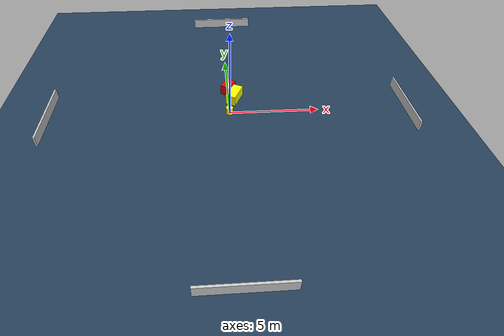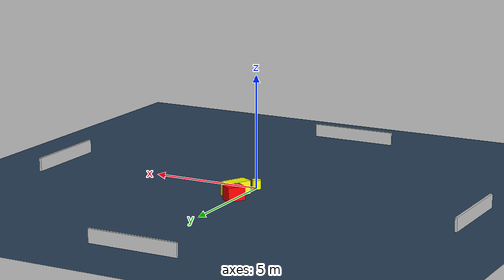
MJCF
<?xml version="1.0" ?>
<mujoco model="generated_environment">
  <option timestep="0.01" integrator="RK4" cone="elliptic"/>
  <default>
    <geom density="1"/>
  </default>
  <asset>
    <texture builtin="gradient" height="3072" name="skybox" rgb1="0.3 0.5 0.7" rgb2="0 0 0" type="skybox" width="512"/>
    <texture builtin="checker" height="300" name="groundplane" rgb1="0.2 0.3 0.4" rgb2="0.1 0.2 0.3" type="2d" width="300"/>
    <material name="groundplane" reflectance="0.2" texrepeat="5 5" texture="groundplane"/>
  </asset>
  <worldbody>
    <light dir="0 0 -1" directional="true" pos="0 0 1.5"/>
    <geom condim="3" friction="0.5 0.005 0.001" material="groundplane" name="floor" pos="0 0 0" size="0 0 0.05" type="plane"/>
    <body name="walls">
      <geom name="wall_1" condim="4" pos="-10.0 0.0 0.3" rgba="0.800000011920929 0.800000011920929 0.800000011920929 1.0" size="0.05 2.0 0.3" type="box"/>
      <geom name="wall_2" condim="4" pos="10.0 0.0 0.3" rgba="0.800000011920929 0.800000011920929 0.800000011920929 1.0" size="0.05 2.0 0.3" type="box"/>
      <geom name="wall_3" condim="4" pos="0.0 -10.0 0.3" rgba="0.800000011920929 0.800000011920929 0.800000011920929 1.0" size="2.0 0.05 0.3" type="box"/>
      <geom name="wall_4" condim="4" pos="0.0 10.0 0.3" rgba="0.800000011920929 0.800000011920929 0.800000011920929 1.0" size="2.0 0.05 0.3" type="box"/>
    </body>
    <body name="robot">
      <joint name="joint_x" type="slide" pos="0 0 0" axis="1 0 0"/>
      <joint name="joint_y" type="slide" pos="0 0 0" axis="0 1 0"/>
      <geom name="robot" type="cylinder" pos="0.0 0.0 0.2" size="0.2 0.2 0.0" mass="5.0" friction="1.0 0.005 0.0001" condim="4" rgba="1.0 1.0 0.0 1.0"/>
    </body>
    <body name="obstacle_1_movable">
      <geom name="obstacle_1_movable" condim="4" pos="0.34702820945680135 1.2391473874850656 0.3" euler="0 0 243.15564957370705" friction="0.0 0.005 0.001" rgba="1.0 1.0 0.0 1.0" size="0.5828215506931801 0.28911664522884695 0.3" type="box" mass="0.1"/>
      <joint type="free"/>
    </body>
    <body name="obstacle_2_static">
      <geom name="obstacle_2_static" condim="4" pos="0.021780257928258037 1.9893759329977208 0.3" euler="0 0 326.00565041240986" friction="0.0 0.005 0.001" rgba="1.0 0.0 0.0 1.0" size="0.2774328548423737 0.3996606894872837 0.3" type="box"/>
    </body>
  </worldbody>
  <actuator>
    <motor name="actuator_x" joint="joint_x" gear="1" ctrlrange="-1 1"/>
    <motor name="actuator_y" joint="joint_y" gear="1" ctrlrange="-1 1"/>
  </actuator>
</mujoco>
